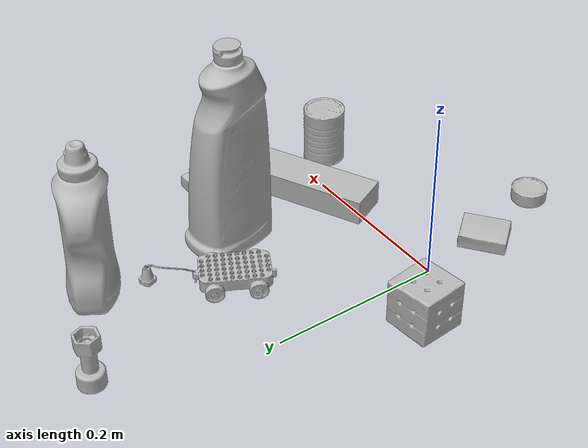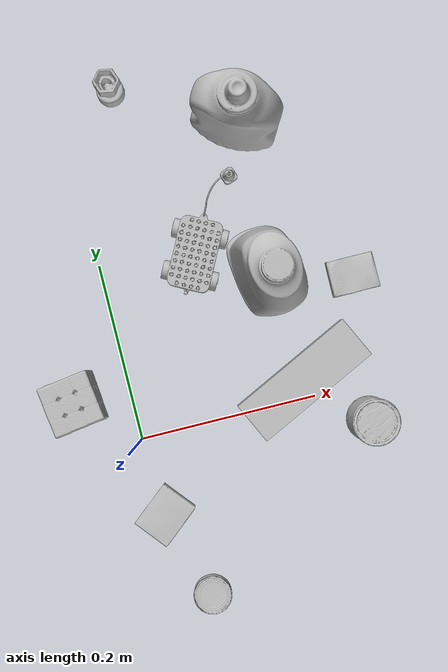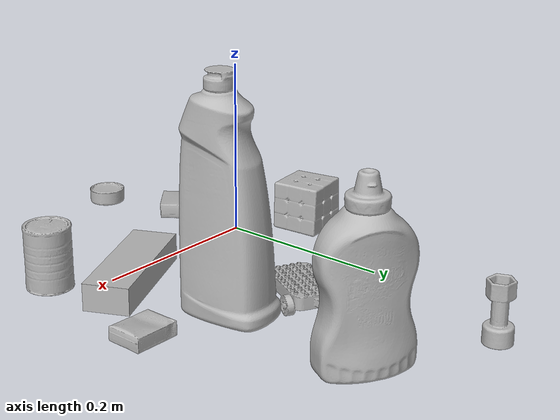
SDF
<sdf version="1.4">
  <world name="default">
    <light name="light1" type="point">
      <pose>0 0 1 0 0 0</pose>
      <diffuse>3 3 3 1</diffuse>
      <specular>3 3 3 1</specular>
    </light>
    <light name="light2" type="point">
      <pose>0 0.5 2 0 0 0</pose>
      <diffuse>1 1 1 1</diffuse>
      <specular>1 1 1 1</specular>
    </light>
    <light name="light3" type="point">
      <pose>0 0.5 2 0 0 0</pose>
      <diffuse>3 3 3 1</diffuse>
      <specular>3 3 3 1</specular>
    </light>
    <scene>
      <ambient>0.7 0.7 0.7</ambient>
    </scene>
    <model name="bottle1">
      <link name="link_bottle1">
        <collision name="default">
          <geometry>
            <mesh>
              <uri>model://mustard_bottle/collision_meshes/collision.obj</uri>
              <scale>1.0 1.0 1.0</scale>
            </mesh>
          </geometry>
          <surface>
            <friction>
              <ode>
                <mu>0.5</mu>
                <mu2>0.5</mu2>
              </ode>
            </friction>
          <contact>
        <ode>
            <max_vel>0</max_vel>
            <min_depth>0.0001</min_depth>
            <kp>1e8</kp>
        </ode>
    </contact></surface>
        </collision>
        <visual name="default">
          <geometry>
            <mesh>
              <uri>model://mustard_bottle/visual_meshes/visual.dae</uri>
              <scale>1.0 1.0 1.0</scale>
            </mesh>
          </geometry>
        </visual>
        <inertial>
          <mass>0.7866348028182983</mass>
          <pose>0.0005032454500906169 -0.00015647400869056582 -0.0174757931381464 0.00041823249995057767 0.0009465787698991903 0.02485370186883952</pose>
          <inertia>
            <ixx>0.0021843775</ixx>
            <iyy>0.0019166061</iyy>
            <izz>0.0005756938</izz>
            <ixy>0</ixy>
            <ixz>0</ixz>
            <iyz>0</iyz>
          </inertia>
        </inertial>
      </link>
      <pose>0.18583016097545624 0.3167789876461029 0.09613417088985443 0.004432625406071555 -0.004343732752810057 1.0312376102323741</pose>
    </model>
    <model name="bottle2">
      <link name="link_bottle2">
        <collision name="default">
          <geometry>
            <mesh>
              <uri>model://bleach_cleanser/collision_meshes/collision.obj</uri>
              <scale>1.0 1.0 1.0</scale>
            </mesh>
          </geometry>
          <surface>
            <friction>
              <ode>
                <mu>0.5</mu>
                <mu2>0.5</mu2>
              </ode>
            </friction>
          <contact>
        <ode>
            <max_vel>0</max_vel>
            <min_depth>0.0001</min_depth>
            <kp>1e8</kp>
        </ode>
    </contact></surface>
        </collision>
        <visual name="default">
          <geometry>
            <mesh>
              <uri>model://bleach_cleanser/visual_meshes/visual.dae</uri>
              <scale>1.0 1.0 1.0</scale>
            </mesh>
          </geometry>
        </visual>
        <inertial>
          <mass>1.5776710510253906</mass>
          <pose>0.00012193183647468686 0.003783883061259985 -0.02442161552608013 -0.07381671362264838 0.0004201168949340897 -0.006875045535038288</pose>
          <inertia>
            <ixx>0.007678755</ixx>
            <iyy>0.0071554743</iyy>
            <izz>0.0013128674</izz>
            <ixy>0</ixy>
            <ixz>0</ixz>
            <iyz>0</iyz>
          </inertia>
        </inertial>
      </link>
      <pose>0.17820416390895844 0.14766258001327515 0.12581239640712738 -0.00025209262120945013 -0.00104694879888748 -3.0197068495712527</pose>
    </model>
    <model name="toy1">
      <link name="link_toy1">
        <collision name="default">
          <geometry>
            <mesh>
              <uri>model://g_lego_duplo/collision_meshes/collision.obj</uri>
              <scale>0.5 0.5 0.5</scale>
            </mesh>
          </geometry>
          <surface>
            <friction>
              <ode>
                <mu>0.5</mu>
                <mu2>0.5</mu2>
              </ode>
            </friction>
          <contact>
        <ode>
            <max_vel>0</max_vel>
            <min_depth>0.0001</min_depth>
            <kp>1e8</kp>
        </ode>
    </contact></surface>
        </collision>
        <visual name="default">
          <geometry>
            <mesh>
              <uri>model://g_lego_duplo/visual_meshes/visual.dae</uri>
              <scale>0.5 0.5 0.5</scale>
            </mesh>
          </geometry>
        </visual>
        <inertial>
          <mass>0.06580430269241333</mass>
          <pose>-0.025023844093084335 0.0008777321199886501 0.0019403373589739203 0.010962977320182745 0.038108249742412996 -0.09653031078073558</pose>
          <inertia>
            <ixx>2.3837789e-05</ixx>
            <iyy>7.206929e-05</iyy>
            <izz>9.016138e-05</izz>
            <ixy>0</ixy>
            <ixz>0</ixz>
            <iyz>0</iyz>
          </inertia>
        </inertial>
      </link>
      <pose>0.12339106947183609 0.21128667891025543 0.014965811744332314 0.001889389623183954 -0.00405573373941228 1.086191823086935</pose>
    </model>
    <model name="toy2">
      <link name="link_toy2">
        <collision name="default">
          <geometry>
            <mesh>
              <uri>model://c_toy_airplane/collision_meshes/collision.obj</uri>
              <scale>1.0 1.0 1.0</scale>
            </mesh>
          </geometry>
          <surface>
            <friction>
              <ode>
                <mu>0.5</mu>
                <mu2>0.5</mu2>
              </ode>
            </friction>
          <contact>
        <ode>
            <max_vel>0</max_vel>
            <min_depth>0.0001</min_depth>
            <kp>1e8</kp>
        </ode>
    </contact></surface>
        </collision>
        <visual name="default">
          <geometry>
            <mesh>
              <uri>model://c_toy_airplane/visual_meshes/visual.dae</uri>
              <scale>1.0 1.0 1.0</scale>
            </mesh>
          </geometry>
        </visual>
        <inertial>
          <mass>0.012545601464807987</mass>
          <pose>-0.00023024262918625027 -4.4310368707556336e-07 -0.0060805282555520535 -0.006192226732466636 -0.01679790977646328 0.7654621556572541</pose>
          <inertia>
            <ixx>5.760684e-06</ixx>
            <iyy>5.744425e-06</iyy>
            <izz>1.3524945e-06</izz>
            <ixy>0</ixy>
            <ixz>0</ixz>
            <iyz>0</iyz>
          </inertia>
        </inertial>
      </link>
      <pose>0.06012827903032303 0.3848367929458618 0.03350928798317909 -0.0005052877178218436 -0.0003828947913729129 1.165538164614551</pose>
    </model>
    <model name="can1">
      <link name="link_can1">
        <collision name="default">
          <geometry>
            <mesh>
              <uri>model://tuna_fish_can/collision_meshes/collision.obj</uri>
              <scale>0.5 0.5 0.5</scale>
            </mesh>
          </geometry>
          <surface>
            <friction>
              <ode>
                <mu>0.5</mu>
                <mu2>0.5</mu2>
              </ode>
            </friction>
          <contact>
        <ode>
            <max_vel>0</max_vel>
            <min_depth>0.0001</min_depth>
            <kp>1e8</kp>
        </ode>
    </contact></surface>
        </collision>
        <visual name="default">
          <geometry>
            <mesh>
              <uri>model://tuna_fish_can/visual_meshes/visual.dae</uri>
              <scale>0.5 0.5 0.5</scale>
            </mesh>
          </geometry>
        </visual>
        <inertial>
          <mass>0.0216250978410244</mass>
          <pose>-2.036200021393597e-05 -7.256498065544292e-06 -0.0005269024986773729 -0.0017944779234091367 0.00017161663308651613 0.24053681665098822</pose>
          <inertia>
            <ixx>2.923745e-06</ixx>
            <iyy>2.9115588e-06</iyy>
            <izz>5.002946e-06</izz>
            <ixy>0</ixy>
            <ixz>0</ixz>
            <iyz>0</iyz>
          </inertia>
        </inertial>
      </link>
      <pose>0.03548398241400719 -0.1863933950662613 0.008519998751580715 -5.210194135504831e-09 -3.501181705715558e-09 -2.5900453768130354</pose>
    </model>
    <model name="can2">
      <link name="link_can2">
        <collision name="default">
          <geometry>
            <mesh>
              <uri>model://master_chef_can/collision_meshes/collision.obj</uri>
              <scale>0.5 0.5 0.5</scale>
            </mesh>
          </geometry>
          <surface>
            <friction>
              <ode>
                <mu>0.5</mu>
                <mu2>0.5</mu2>
              </ode>
            </friction>
          <contact>
        <ode>
            <max_vel>0</max_vel>
            <min_depth>0.0001</min_depth>
            <kp>1e8</kp>
        </ode>
    </contact></surface>
        </collision>
        <visual name="default">
          <geometry>
            <mesh>
              <uri>model://master_chef_can/visual_meshes/visual.dae</uri>
              <scale>0.5 0.5 0.5</scale>
            </mesh>
          </geometry>
        </visual>
        <inertial>
          <mass>0.16779577732086182</mass>
          <pose>-4.661964703700505e-05 1.3926845099376806e-07 -5.080012488178909e-05 -0.001799515621871614 0.0006479176547847844 -0.610266079213139</pose>
          <inertia>
            <ixx>9.848473e-05</ixx>
            <iyy>9.77599e-05</iyy>
            <izz>5.442035e-05</izz>
            <ixy>0</ixy>
            <ixz>0</ixz>
            <iyz>0</iyz>
          </inertia>
        </inertial>
      </link>
      <pose>0.2525935173034668 -0.03916895389556885 0.03530200198292732 -1.4221429586409431e-06 -9.856239989751176e-07 -2.222622045991224</pose>
    </model>
    <model name="box1">
      <link name="link_box1">
        <collision name="default">
          <geometry>
            <mesh>
              <uri>model://rubiks_cube/collision_meshes/collision.obj</uri>
              <scale>1.0 1.0 1.0</scale>
            </mesh>
          </geometry>
          <surface>
            <friction>
              <ode>
                <mu>0.5</mu>
                <mu2>0.5</mu2>
              </ode>
            </friction>
          <contact>
        <ode>
            <max_vel>0</max_vel>
            <min_depth>0.0001</min_depth>
            <kp>1e8</kp>
        </ode>
    </contact></surface>
        </collision>
        <visual name="default">
          <geometry>
            <mesh>
              <uri>model://rubiks_cube/visual_meshes/visual.dae</uri>
              <scale>1.0 1.0 1.0</scale>
            </mesh>
          </geometry>
        </visual>
        <inertial>
          <mass>0.232398122549057</mass>
          <pose>2.6721041649580002e-05 5.256967051536776e-05 -7.264316082000732e-06 -0.05467303663832053 -0.0981402329670775 -0.034454960240128486</pose>
          <inertia>
            <ixx>0.00012841556</ixx>
            <iyy>0.00012781669</iyy>
            <izz>0.00012947968</izz>
            <ixy>0</ixy>
            <ixz>0</ixz>
            <iyz>0</iyz>
          </inertia>
        </inertial>
      </link>
      <pose>-0.061441127210855484 0.05803389102220535 0.028678974136710167 -2.5767931430156903e-06 -9.068921070426508e-07 0.13037788778046483</pose>
    </model>
    <model name="box2">
      <link name="link_box2">
        <collision name="default">
          <geometry>
            <mesh>
              <uri>model://jenga/collision_meshes/collision.obj</uri>
              <scale>1.0 1.0 1.0</scale>
            </mesh>
          </geometry>
          <surface>
            <friction>
              <ode>
                <mu>0.5</mu>
                <mu2>0.5</mu2>
              </ode>
            </friction>
          <contact>
        <ode>
            <max_vel>0</max_vel>
            <min_depth>0.0001</min_depth>
            <kp>1e8</kp>
        </ode>
    </contact></surface>
        </collision>
        <visual name="default">
          <geometry>
            <mesh>
              <uri>model://jenga/visual_meshes/visual.dae</uri>
              <scale>1.0 1.0 1.0</scale>
            </mesh>
          </geometry>
        </visual>
        <inertial>
          <mass>0.2088489830493927</mass>
          <pose>-2.502855807051674e-07 -0.0001025000965455547 -4.092339804628864e-05 0.0 -7.342154049184251e-07 0.0</pose>
          <inertia>
            <ixx>5.7793575e-05</ixx>
            <iyy>0.00039160773</iyy>
            <izz>0.00041807455</izz>
            <ixy>0</ixy>
            <ixz>0</ixz>
            <iyz>0</iyz>
          </inertia>
        </inertial>
      </link>
      <pose>0.19133006036281586 0.021046455949544907 0.014999994076788425 1.5700096105569917e-08 -3.4277023194757983e-09 0.45097694124091875</pose>
    </model>
    <model name="box3">
      <link name="link_box3">
        <collision name="default">
          <geometry>
            <mesh>
              <uri>model://cracker_box/collision_meshes/collision.obj</uri>
              <scale>0.25 0.25 0.25</scale>
            </mesh>
          </geometry>
          <surface>
            <friction>
              <ode>
                <mu>0.5</mu>
                <mu2>0.5</mu2>
              </ode>
            </friction>
          <contact>
        <ode>
            <max_vel>0</max_vel>
            <min_depth>0.0001</min_depth>
            <kp>1e8</kp>
        </ode>
    </contact></surface>
        </collision>
        <visual name="default">
          <geometry>
            <mesh>
              <uri>model://cracker_box/visual_meshes/visual.dae</uri>
              <scale>0.25 0.25 0.25</scale>
            </mesh>
          </geometry>
        </visual>
        <inertial>
          <mass>0.039105094969272614</mass>
          <pose>0.00023660340229980648 6.358561222441494e-05 -0.00042573834070935845 -0.0003162078884583708 -0.011106488668689832 0.0025467950032832675</pose>
          <inertia>
            <ixx>6.216619e-06</ixx>
            <iyy>1.0264859e-05</iyy>
            <izz>1.4648894e-05</izz>
            <ixy>0</ixy>
            <ixz>0</ixz>
            <iyz>0</iyz>
          </inertia>
        </inertial>
      </link>
      <pose>0.27303996682167053 0.12182734906673431 0.009120450355112553 -0.011787984382399924 -0.007367172595195063 0.0002308116058305213</pose>
    </model>
    <model name="box4">
      <link name="link_box4">
        <collision name="default">
          <geometry>
            <mesh>
              <uri>model://pudding_box/collision_meshes/collision.obj</uri>
              <scale>0.5 0.5 0.5</scale>
            </mesh>
          </geometry>
          <surface>
            <friction>
              <ode>
                <mu>0.5</mu>
                <mu2>0.5</mu2>
              </ode>
            </friction>
          <contact>
        <ode>
            <max_vel>0</max_vel>
            <min_depth>0.0001</min_depth>
            <kp>1e8</kp>
        </ode>
    </contact></surface>
        </collision>
        <visual name="default">
          <geometry>
            <mesh>
              <uri>model://pudding_box/visual_meshes/visual.dae</uri>
              <scale>0.5 0.5 0.5</scale>
            </mesh>
          </geometry>
        </visual>
        <inertial>
          <mass>0.03813362866640091</mass>
          <pose>0.00024474109522998333 0.00040339428232982755 -0.0002594413817860186 0.005213101815861678 -0.006603796390356506 0.020079825165494957</pose>
          <inertia>
            <ixx>1.0777026e-05</ixx>
            <iyy>7.25086e-06</iyy>
            <izz>1.5915095e-05</izz>
            <ixy>0</ixy>
            <ixz>0</ixz>
            <iyz>0</iyz>
          </inertia>
        </inertial>
      </link>
      <pose>0.005421492271125317 -0.08777102828025818 0.009862900711596012 0.022348435521655316 -0.011391813704064842 -0.8790270578231529</pose>
    </model>
  <physics type="ode">
      <max_contacts>50</max_contacts>
      <ode>
        <solver>
          <type>quick</type>
          <iters>75</iters>
        </solver>
        <constraints>
          <contact_max_correcting_vel>0</contact_max_correcting_vel>
          <contact_surface_layer>0</contact_surface_layer>
        </constraints>
      </ode>
    </physics></world>
</sdf>
